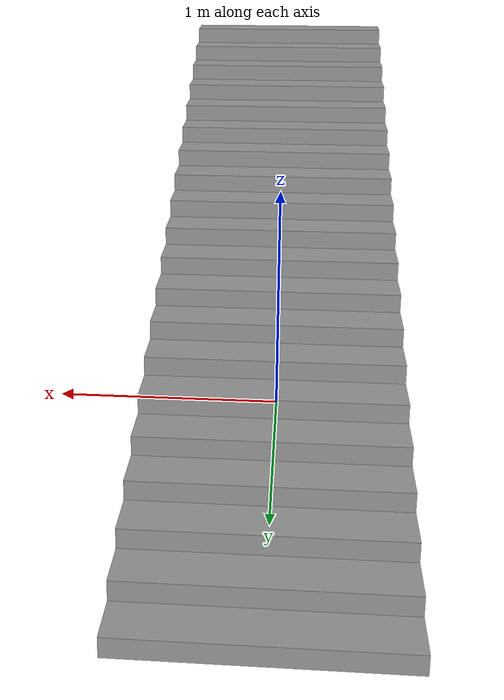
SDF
<?xml version="1.0" ?>
<sdf version="1.6">
    <model name='terrain-stairs_long'>
            <pose frame=''>0 0 0 0 0 0</pose>
            <link name='Stairs_3'>
                <visual name='Stairs_3_Visual_0'>
                    <pose frame=''>0 1.6625 0.0375 0 -0 0</pose>
                    <geometry>
                        <box>
                            <size>1 0.175 0.075</size>
                        </box>
                    </geometry>
                    <material>
                        <script>
                            <uri>file://media/materials/scripts/gazebo.material</uri>
                            <name>Gazebo/Grey</name>
                        </script>
                        <ambient>1 1 1 1</ambient>
                    </material>
                    <meta>
                        <layer>0</layer>
                    </meta>
                </visual>
                <collision name='Stairs_3_Collision_0'>
                    <geometry>
                        <box>
                            <size>1 0.175 0.075</size>
                        </box>
                    </geometry>
                    <pose frame=''>0 1.6625 0.0375 0 -0 0</pose>
                </collision>
                <visual name='Stairs_3_Visual_1'>
                    <pose frame=''>0 1.4875 0.1125 0 -0 0</pose>
                    <geometry>
                        <box>
                            <size>1 0.175 0.075</size>
                        </box>
                    </geometry>
                    <material>
                        <script>
                            <uri>file://media/materials/scripts/gazebo.material</uri>
                            <name>Gazebo/Grey</name>
                        </script>
                        <ambient>1 1 1 1</ambient>
                    </material>
                    <meta>
                        <layer>0</layer>
                    </meta>
                </visual>
                <collision name='Stairs_3_Collision_1'>
                    <geometry>
                        <box>
                            <size>1 0.175 0.075</size>
                        </box>
                    </geometry>
                    <pose frame=''>0 1.4875 0.1125 0 -0 0</pose>
                </collision>
                <visual name='Stairs_3_Visual_2'>
                    <pose frame=''>0 1.3125 0.1875 0 -0 0</pose>
                    <geometry>
                        <box>
                            <size>1 0.175 0.075</size>
                        </box>
                    </geometry>
                    <material>
                        <script>
                            <uri>file://media/materials/scripts/gazebo.material</uri>
                            <name>Gazebo/Grey</name>
                        </script>
                        <ambient>1 1 1 1</ambient>
                    </material>
                    <meta>
                        <layer>0</layer>
                    </meta>
                </visual>
                <collision name='Stairs_3_Collision_2'>
                    <geometry>
                        <box>
                            <size>1 0.175 0.075</size>
                        </box>
                    </geometry>
                    <pose frame=''>0 1.3125 0.1875 0 -0 0</pose>
                </collision>
                <visual name='Stairs_3_Visual_3'>
                    <pose frame=''>0 1.1375 0.2625 0 -0 0</pose>
                    <geometry>
                        <box>
                            <size>1 0.175 0.075</size>
                        </box>
                    </geometry>
                    <material>
                        <script>
                            <uri>file://media/materials/scripts/gazebo.material</uri>
                            <name>Gazebo/Grey</name>
                        </script>
                        <ambient>1 1 1 1</ambient>
                    </material>
                    <meta>
                        <layer>0</layer>
                    </meta>
                </visual>
                <collision name='Stairs_3_Collision_3'>
                    <geometry>
                        <box>
                            <size>1 0.175 0.075</size>
                        </box>
                    </geometry>
                    <pose frame=''>0 1.1375 0.2625 0 -0 0</pose>
                </collision>
                <visual name='Stairs_3_Visual_4'>
                    <pose frame=''>0 0.9625 0.3375 0 -0 0</pose>
                    <geometry>
                        <box>
                            <size>1 0.175 0.075</size>
                        </box>
                    </geometry>
                    <material>
                        <script>
                            <uri>file://media/materials/scripts/gazebo.material</uri>
                            <name>Gazebo/Grey</name>
                        </script>
                        <ambient>1 1 1 1</ambient>
                    </material>
                    <meta>
                        <layer>0</layer>
                    </meta>
                </visual>
                <collision name='Stairs_3_Collision_4'>
                    <geometry>
                        <box>
                            <size>1 0.175 0.075</size>
                        </box>
                    </geometry>
                    <pose frame=''>0 0.9625 0.3375 0 -0 0</pose>
                </collision>
                <visual name='Stairs_3_Visual_5'>
                    <pose frame=''>0 0.7875 0.4125 0 -0 0</pose>
                    <geometry>
                        <box>
                            <size>1 0.175 0.075</size>
                        </box>
                    </geometry>
                    <material>
                        <script>
                            <uri>file://media/materials/scripts/gazebo.material</uri>
                            <name>Gazebo/Grey</name>
                        </script>
                        <ambient>1 1 1 1</ambient>
                    </material>
                    <meta>
                        <layer>0</layer>
                    </meta>
                </visual>
                <collision name='Stairs_3_Collision_5'>
                    <geometry>
                        <box>
                            <size>1 0.175 0.075</size>
                        </box>
                    </geometry>
                    <pose frame=''>0 0.7875 0.4125 0 -0 0</pose>
                </collision>
                <visual name='Stairs_3_Visual_6'>
                    <pose frame=''>0 0.6125 0.4875 0 -0 0</pose>
                    <geometry>
                        <box>
                            <size>1 0.175 0.075</size>
                        </box>
                    </geometry>
                    <material>
                        <script>
                            <uri>file://media/materials/scripts/gazebo.material</uri>
                            <name>Gazebo/Grey</name>
                        </script>
                        <ambient>1 1 1 1</ambient>
                    </material>
                    <meta>
                        <layer>0</layer>
                    </meta>
                </visual>
                <collision name='Stairs_3_Collision_6'>
                    <geometry>
                        <box>
                            <size>1 0.175 0.075</size>
                        </box>
                    </geometry>
                    <pose frame=''>0 0.6125 0.4875 0 -0 0</pose>
                </collision>
                <visual name='Stairs_3_Visual_7'>
                    <pose frame=''>0 0.4375 0.5625 0 -0 0</pose>
                    <geometry>
                        <box>
                            <size>1 0.175 0.075</size>
                        </box>
                    </geometry>
                    <material>
                        <script>
                            <uri>file://media/materials/scripts/gazebo.material</uri>
                            <name>Gazebo/Grey</name>
                        </script>
                        <ambient>1 1 1 1</ambient>
                    </material>
                    <meta>
                        <layer>0</layer>
                    </meta>
                </visual>
                <collision name='Stairs_3_Collision_7'>
                    <geometry>
                        <box>
                            <size>1 0.175 0.075</size>
                        </box>
                    </geometry>
                    <pose frame=''>0 0.4375 0.5625 0 -0 0</pose>
                </collision>
                <visual name='Stairs_3_Visual_8'>
                    <pose frame=''>0 0.2625 0.6375 0 -0 0</pose>
                    <geometry>
                        <box>
                            <size>1 0.175 0.075</size>
                        </box>
                    </geometry>
                    <material>
                        <script>
                            <uri>file://media/materials/scripts/gazebo.material</uri>
                            <name>Gazebo/Grey</name>
                        </script>
                        <ambient>1 1 1 1</ambient>
                    </material>
                    <meta>
                        <layer>0</layer>
                    </meta>
                </visual>
                <collision name='Stairs_3_Collision_8'>
                    <geometry>
                        <box>
                            <size>1 0.175 0.075</size>
                        </box>
                    </geometry>
                    <pose frame=''>0 0.2625 0.6375 0 -0 0</pose>
                </collision>
                <visual name='Stairs_3_Visual_9'>
                    <pose frame=''>0 0.0875 0.7125 0 -0 0</pose>
                    <geometry>
                        <box>
                            <size>1 0.175 0.075</size>
                        </box>
                    </geometry>
                    <material>
                        <script>
                            <uri>file://media/materials/scripts/gazebo.material</uri>
                            <name>Gazebo/Grey</name>
                        </script>
                        <ambient>1 1 1 1</ambient>
                    </material>
                    <meta>
                        <layer>0</layer>
                    </meta>
                </visual>
                <collision name='Stairs_3_Collision_9'>
                    <geometry>
                        <box>
                            <size>1 0.175 0.075</size>
                        </box>
                    </geometry>
                    <pose frame=''>0 0.0875 0.7125 0 -0 0</pose>
                </collision>
                <visual name='Stairs_3_Visual_10'>
                    <pose frame=''>0 -0.0875 0.7875 0 -0 0</pose>
                    <geometry>
                        <box>
                            <size>1 0.175 0.075</size>
                        </box>
                    </geometry>
                    <material>
                        <script>
                            <uri>file://media/materials/scripts/gazebo.material</uri>
                            <name>Gazebo/Grey</name>
                        </script>
                        <ambient>1 1 1 1</ambient>
                    </material>
                    <meta>
                        <layer>0</layer>
                    </meta>
                </visual>
                <collision name='Stairs_3_Collision_10'>
                    <geometry>
                        <box>
                            <size>1 0.175 0.075</size>
                        </box>
                    </geometry>
                    <pose frame=''>0 -0.0875 0.7875 0 -0 0</pose>
                </collision>
                <visual name='Stairs_3_Visual_11'>
                    <pose frame=''>0 -0.2625 0.8625 0 -0 0</pose>
                    <geometry>
                        <box>
                            <size>1 0.175 0.075</size>
                        </box>
                    </geometry>
                    <material>
                        <script>
                            <uri>file://media/materials/scripts/gazebo.material</uri>
                            <name>Gazebo/Grey</name>
                        </script>
                        <ambient>1 1 1 1</ambient>
                    </material>
                    <meta>
                        <layer>0</layer>
                    </meta>
                </visual>
                <collision name='Stairs_3_Collision_11'>
                    <geometry>
                        <box>
                            <size>1 0.175 0.075</size>
                        </box>
                    </geometry>
                    <pose frame=''>0 -0.2625 0.8625 0 -0 0</pose>
                </collision>
                <visual name='Stairs_3_Visual_12'>
                    <pose frame=''>0 -0.4375 0.9375 0 -0 0</pose>
                    <geometry>
                        <box>
                            <size>1 0.175 0.075</size>
                        </box>
                    </geometry>
                    <material>
                        <script>
                            <uri>file://media/materials/scripts/gazebo.material</uri>
                            <name>Gazebo/Grey</name>
                        </script>
                        <ambient>1 1 1 1</ambient>
                    </material>
                    <meta>
                        <layer>0</layer>
                    </meta>
                </visual>
                <collision name='Stairs_3_Collision_12'>
                    <geometry>
                        <box>
                            <size>1 0.175 0.075</size>
                        </box>
                    </geometry>
                    <pose frame=''>0 -0.4375 0.9375 0 -0 0</pose>
                </collision>
                <visual name='Stairs_3_Visual_13'>
                    <pose frame=''>0 -0.6125 1.0125 0 -0 0</pose>
                    <geometry>
                        <box>
                            <size>1 0.175 0.075</size>
                        </box>
                    </geometry>
                    <material>
                        <script>
                            <uri>file://media/materials/scripts/gazebo.material</uri>
                            <name>Gazebo/Grey</name>
                        </script>
                        <ambient>1 1 1 1</ambient>
                    </material>
                    <meta>
                        <layer>0</layer>
                    </meta>
                </visual>
                <collision name='Stairs_3_Collision_13'>
                    <geometry>
                        <box>
                            <size>1 0.175 0.075</size>
                        </box>
                    </geometry>
                    <pose frame=''>0 -0.6125 1.0125 0 -0 0</pose>
                </collision>
                <visual name='Stairs_3_Visual_14'>
                    <pose frame=''>0 -0.7875 1.0875 0 -0 0</pose>
                    <geometry>
                        <box>
                            <size>1 0.175 0.075</size>
                        </box>
                    </geometry>
                    <material>
                        <script>
                            <uri>file://media/materials/scripts/gazebo.material</uri>
                            <name>Gazebo/Grey</name>
                        </script>
                        <ambient>1 1 1 1</ambient>
                    </material>
                    <meta>
                        <layer>0</layer>
                    </meta>
                </visual>
                <collision name='Stairs_3_Collision_14'>
                    <geometry>
                        <box>
                            <size>1 0.175 0.075</size>
                        </box>
                    </geometry>
                    <pose frame=''>0 -0.7875 1.0875 0 -0 0</pose>
                </collision>
                <visual name='Stairs_3_Visual_15'>
                    <pose frame=''>0 -0.9625 1.1625 0 -0 0</pose>
                    <geometry>
                        <box>
                            <size>1 0.175 0.075</size>
                        </box>
                    </geometry>
                    <material>
                        <script>
                            <uri>file://media/materials/scripts/gazebo.material</uri>
                            <name>Gazebo/Grey</name>
                        </script>
                        <ambient>1 1 1 1</ambient>
                    </material>
                    <meta>
                        <layer>0</layer>
                    </meta>
                </visual>
                <collision name='Stairs_3_Collision_15'>
                    <geometry>
                        <box>
                            <size>1 0.175 0.075</size>
                        </box>
                    </geometry>
                    <pose frame=''>0 -0.9625 1.1625 0 -0 0</pose>
                </collision>
                <visual name='Stairs_3_Visual_16'>
                    <pose frame=''>0 -1.1375 1.2375 0 -0 0</pose>
                    <geometry>
                        <box>
                            <size>1 0.175 0.075</size>
                        </box>
                    </geometry>
                    <material>
                        <script>
                            <uri>file://media/materials/scripts/gazebo.material</uri>
                            <name>Gazebo/Grey</name>
                        </script>
                        <ambient>1 1 1 1</ambient>
                    </material>
                    <meta>
                        <layer>0</layer>
                    </meta>
                </visual>
                <collision name='Stairs_3_Collision_16'>
                    <geometry>
                        <box>
                            <size>1 0.175 0.075</size>
                        </box>
                    </geometry>
                    <pose frame=''>0 -1.1375 1.2375 0 -0 0</pose>
                </collision>
                <visual name='Stairs_3_Visual_17'>
                    <pose frame=''>0 -1.3125 1.3125 0 -0 0</pose>
                    <geometry>
                        <box>
                            <size>1 0.175 0.075</size>
                        </box>
                    </geometry>
                    <material>
                        <script>
                            <uri>file://media/materials/scripts/gazebo.material</uri>
                            <name>Gazebo/Grey</name>
                        </script>
                        <ambient>1 1 1 1</ambient>
                    </material>
                    <meta>
                        <layer>0</layer>
                    </meta>
                </visual>
                <collision name='Stairs_3_Collision_17'>
                    <geometry>
                        <box>
                            <size>1 0.175 0.075</size>
                        </box>
                    </geometry>
                    <pose frame=''>0 -1.3125 1.3125 0 -0 0</pose>
                </collision>
                <visual name='Stairs_3_Visual_18'>
                    <pose frame=''>0 -1.4875 1.3875 0 -0 0</pose>
                    <geometry>
                        <box>
                            <size>1 0.175 0.075</size>
                        </box>
                    </geometry>
                    <material>
                        <script>
                            <uri>file://media/materials/scripts/gazebo.material</uri>
                            <name>Gazebo/Grey</name>
                        </script>
                        <ambient>1 1 1 1</ambient>
                    </material>
                    <meta>
                        <layer>0</layer>
                    </meta>
                </visual>
                <collision name='Stairs_3_Collision_18'>
                    <geometry>
                        <box>
                            <size>1 0.175 0.075</size>
                        </box>
                    </geometry>
                    <pose frame=''>0 -1.4875 1.3875 0 -0 0</pose>
                </collision>
                <visual name='Stairs_3_Visual_19'>
                    <pose frame=''>0 -1.6625 1.4625 0 -0 0</pose>
                    <geometry>
                        <box>
                            <size>1 0.175 0.075</size>
                        </box>
                    </geometry>
                    <material>
                        <script>
                            <uri>file://media/materials/scripts/gazebo.material</uri>
                            <name>Gazebo/Grey</name>
                        </script>
                        <ambient>1 1 1 1</ambient>
                    </material>
                    <meta>
                        <layer>0</layer>
                    </meta>
                </visual>
                <collision name='Stairs_3_Collision_19'>
                    <geometry>
                        <box>
                            <size>1 0.175 0.075</size>
                        </box>
                    </geometry>
                    <pose frame=''>0 -1.6625 1.4625 0 -0 0</pose>
                </collision>
            </link>
            <static>1</static>
        </model>
</sdf>
